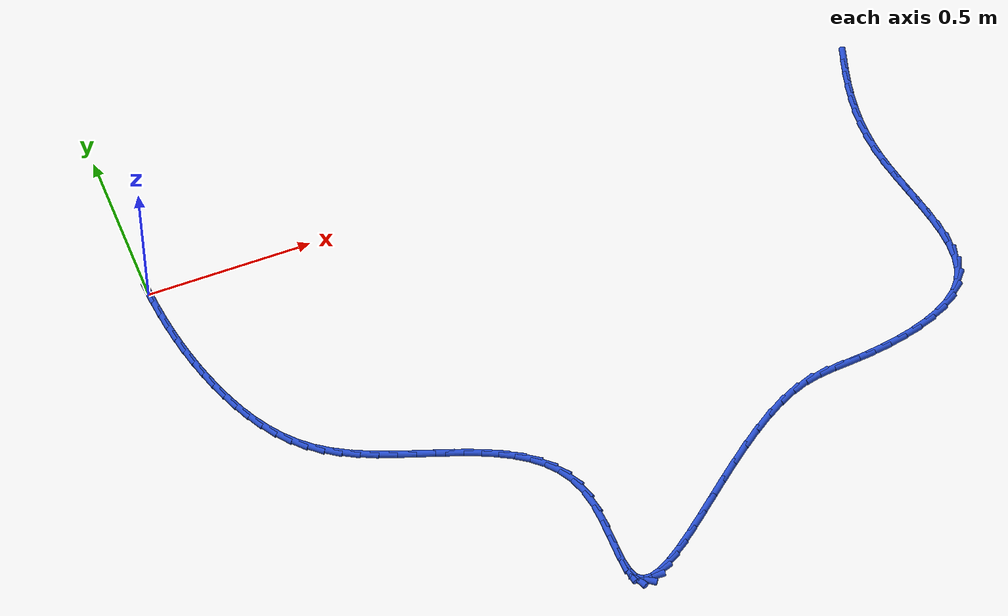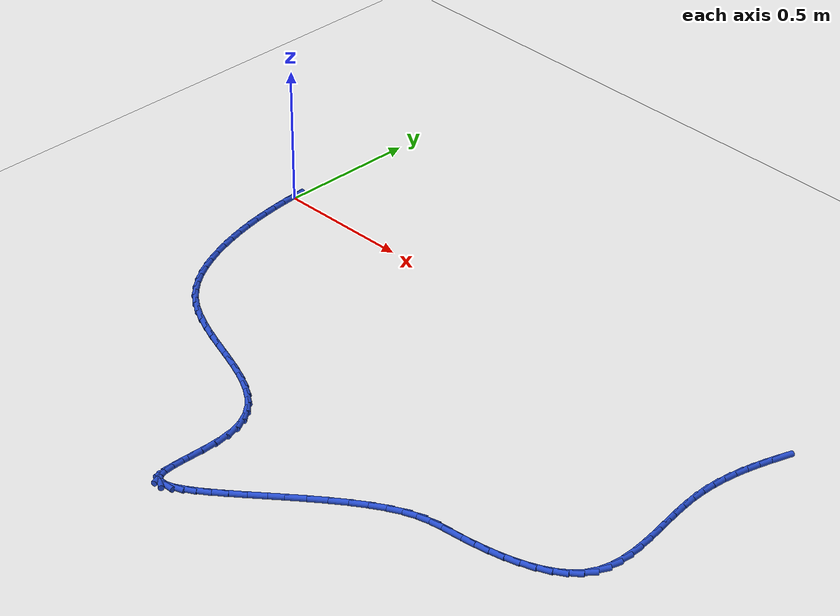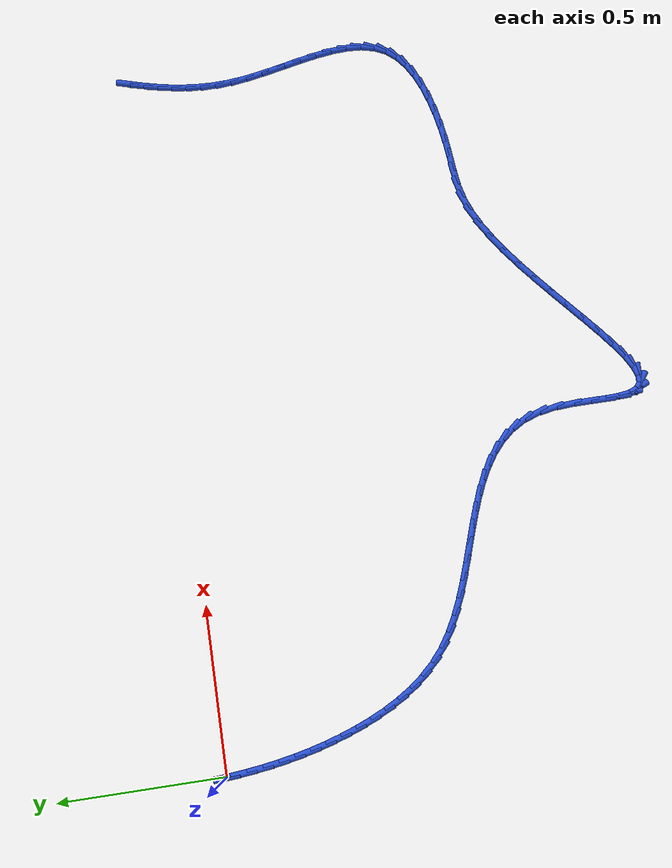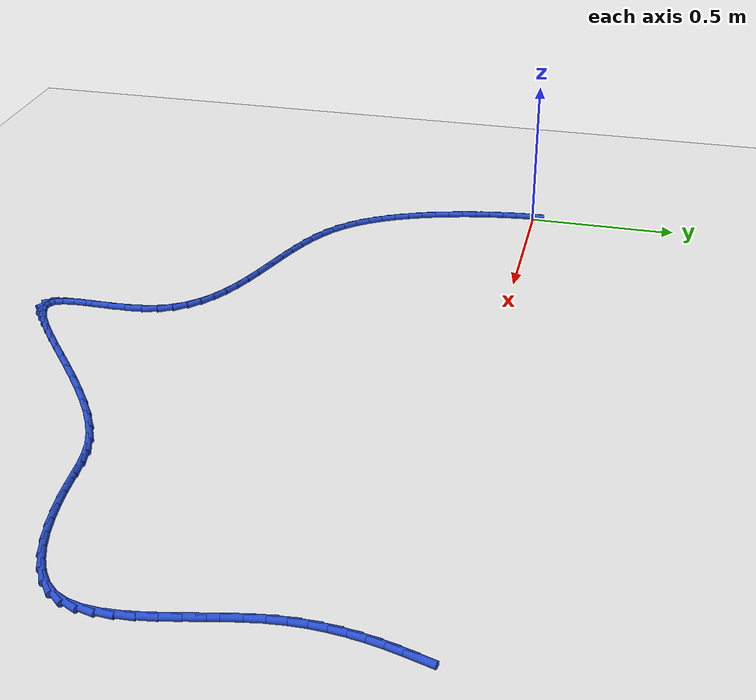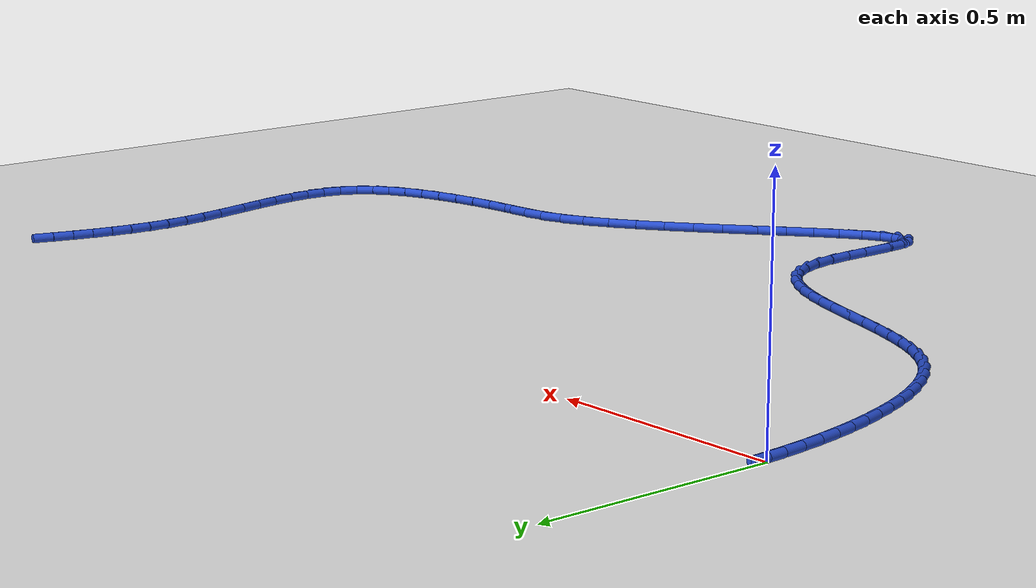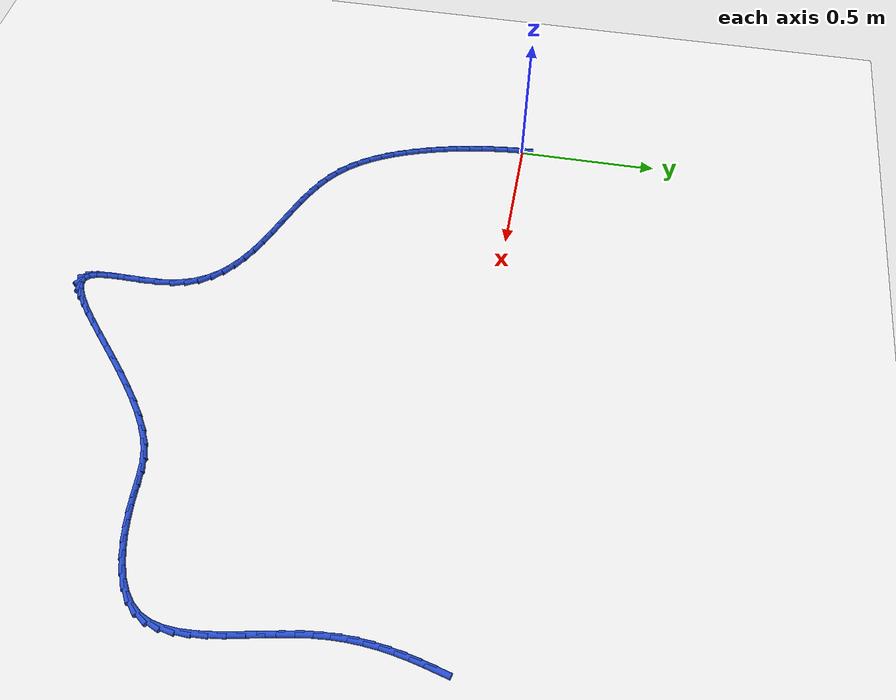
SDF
<sdf version="1.6">
 <world name="default">
  <model name="ground_plane">
   <static>1</static>
   <link name="link">
    <collision name="collision">
     <geometry><plane><normal>0 0 1</normal><size>100 100</size></plane></geometry>
     <surface><friction><ode><mu>100</mu><mu2>50</mu2></ode></friction></surface>
    </collision>
    <visual name="visual">
     <cast_shadows>0</cast_shadows>
     <geometry><plane><normal>0 0 1</normal><size>100 100</size></plane></geometry>
     <material>
      <script><uri>file://media/materials/scripts/gazebo.material</uri><name>Gazebo/WhiteGlow</name></script>
     </material>
    </visual>
   </link>
  </model>
  <model name="line">
   <link name="link_0">
    <pose>1.6263032587282567e-17 1.3877787807814457e-17 0.01 0 1.57 -1.513585574308806</pose>
    <collision name="collision">
     <geometry><cylinder><radius>0.01</radius><length>0.08</length></cylinder></geometry>
    </collision>
    <visual name="visual">
     <material>
      <script><name>Gazebo/Blue</name><uri>file://media/materials/scripts/gazebo.material</uri></script>
     </material>
     <geometry><cylinder><radius>0.01</radius><length>0.08</length></cylinder></geometry>
    </visual>
   </link>
   <link name="link_86">
    <pose>2.2250624717521132 0.04204985202964082 0.01 0 1.57 1.2909860486282276</pose>
    <collision name="collision">
     <geometry><cylinder><radius>0.01</radius><length>0.08</length></cylinder></geometry>
    </collision>
    <visual name="visual">
     <material>
      <script><name>Gazebo/Blue</name><uri>file://media/materials/scripts/gazebo.material</uri></script>
     </material>
     <geometry><cylinder><radius>0.01</radius><length>0.08</length></cylinder></geometry>
    </visual>
   </link>
   <link name="link_87">
    <pose>2.2123838200711945 -0.002072991203806482 0.01 0 1.57 1.3229405477086498</pose>
    <collision name="collision">
     <geometry><cylinder><radius>0.01</radius><length>0.08</length></cylinder></geometry>
    </collision>
    <visual name="visual">
     <material>
      <script><name>Gazebo/Blue</name><uri>file://media/materials/scripts/gazebo.material</uri></script>
     </material>
     <geometry><cylinder><radius>0.01</radius><length>0.08</length></cylinder></geometry>
    </visual>
   </link>
   <link name="link_88">
    <pose>2.2011722596943297 -0.04637710199915017 0.01 0 1.57 1.364024570623312</pose>
    <collision name="collision">
     <geometry><cylinder><radius>0.01</radius><length>0.08</length></cylinder></geometry>
    </collision>
    <visual name="visual">
     <material>
      <script><name>Gazebo/Blue</name><uri>file://media/materials/scripts/gazebo.material</uri></script>
     </material>
     <geometry><cylinder><radius>0.01</radius><length>0.08</length></cylinder></geometry>
    </visual>
   </link>
   <link name="link_89">
    <pose>2.191786203127898 -0.09112164707544651 0.01 0 1.57 1.4136202119545818</pose>
    <collision name="collision">
     <geometry><cylinder><radius>0.01</radius><length>0.08</length></cylinder></geometry>
    </collision>
    <visual name="visual">
     <material>
      <script><name>Gazebo/Blue</name><uri>file://media/materials/scripts/gazebo.material</uri></script>
     </material>
     <geometry><cylinder><radius>0.01</radius><length>0.08</length></cylinder></geometry>
    </visual>
   </link>
   <link name="link_90">
    <pose>2.1845840628782804 -0.13656579315174955 0.01 0 1.57 1.4707111924177096</pose>
    <collision name="collision">
     <geometry><cylinder><radius>0.01</radius><length>0.08</length></cylinder></geometry>
    </collision>
    <visual name="visual">
     <material>
      <script><name>Gazebo/Blue</name><uri>file://media/materials/scripts/gazebo.material</uri></script>
     </material>
     <geometry><cylinder><radius>0.01</radius><length>0.08</length></cylinder></geometry>
    </visual>
   </link>
   <link name="link_91">
    <pose>2.1799242514518555 -0.1829687069471155 0.01 0 1.57 1.5338740388577399</pose>
    <collision name="collision">
     <geometry><cylinder><radius>0.01</radius><length>0.08</length></cylinder></geometry>
    </collision>
    <visual name="visual">
     <material>
      <script><name>Gazebo/Blue</name><uri>file://media/materials/scripts/gazebo.material</uri></script>
     </material>
     <geometry><cylinder><radius>0.01</radius><length>0.08</length></cylinder></geometry>
    </visual>
   </link>
   <link name="link_92">
    <pose>2.1781651813550047 -0.2305895551806 0.01 0 1.57 -1.5402529486358585</pose>
    <collision name="collision">
     <geometry><cylinder><radius>0.01</radius><length>0.08</length></cylinder></geometry>
    </collision>
    <visual name="visual">
     <material>
      <script><name>Gazebo/Blue</name><uri>file://media/materials/scripts/gazebo.material</uri></script>
     </material>
     <geometry><cylinder><radius>0.01</radius><length>0.08</length></cylinder></geometry>
    </visual>
   </link>
   <link name="link_93">
    <pose>2.1796652650941057 -0.27968750457125857 0.01 0 1.57 -1.470553014191597</pose>
    <collision name="collision">
     <geometry><cylinder><radius>0.01</radius><length>0.08</length></cylinder></geometry>
    </collision>
    <visual name="visual">
     <material>
      <script><name>Gazebo/Blue</name><uri>file://media/materials/scripts/gazebo.material</uri></script>
     </material>
     <geometry><cylinder><radius>0.01</radius><length>0.08</length></cylinder></geometry>
    </visual>
   </link>
   <link name="link_94">
    <pose>2.184777904194932 -0.3305188500503508 0.01 0 1.57 -1.4095554112603081</pose>
    <collision name="collision">
     <geometry><cylinder><radius>0.01</radius><length>0.08</length></cylinder></geometry>
    </collision>
    <visual name="visual">
     <material>
      <script><name>Gazebo/Blue</name><uri>file://media/materials/scripts/gazebo.material</uri></script>
     </material>
     <geometry><cylinder><radius>0.01</radius><length>0.08</length></cylinder></geometry>
    </visual>
   </link>
   <link name="link_95">
    <pose>2.1933193284508654 -0.38303203398562147 0.01 0 1.57 -1.3722291275021659</pose>
    <collision name="collision">
     <geometry><cylinder><radius>0.01</radius><length>0.08</length></cylinder></geometry>
    </collision>
    <visual name="visual">
     <material>
      <script><name>Gazebo/Blue</name><uri>file://media/materials/scripts/gazebo.material</uri></script>
     </material>
     <geometry><cylinder><radius>0.01</radius><length>0.08</length></cylinder></geometry>
    </visual>
   </link>
   <link name="link_96">
    <pose>2.2040977704781923 -0.4365978166065487 0.01 0 1.57 -1.3569176987446583</pose>
    <collision name="collision">
     <geometry><cylinder><radius>0.01</radius><length>0.08</length></cylinder></geometry>
    </collision>
    <visual name="visual">
     <material>
      <script><name>Gazebo/Blue</name><uri>file://media/materials/scripts/gazebo.material</uri></script>
     </material>
     <geometry><cylinder><radius>0.01</radius><length>0.08</length></cylinder></geometry>
    </visual>
   </link>
   <link name="link_97">
    <pose>2.215810425614828 -0.49052332279337285 0.01 0 1.57 -1.3622021734464136</pose>
    <collision name="collision">
     <geometry><cylinder><radius>0.01</radius><length>0.08</length></cylinder></geometry>
    </collision>
    <visual name="visual">
     <material>
      <script><name>Gazebo/Blue</name><uri>file://media/materials/scripts/gazebo.material</uri></script>
     </material>
     <geometry><cylinder><radius>0.01</radius><length>0.08</length></cylinder></geometry>
    </visual>
   </link>
   <link name="link_98">
    <pose>2.227154489198691 -0.5441156774263345 0.01 0 1.57 -1.3888231209143478</pose>
    <collision name="collision">
     <geometry><cylinder><radius>0.01</radius><length>0.08</length></cylinder></geometry>
    </collision>
    <visual name="visual">
     <material>
      <script><name>Gazebo/Blue</name><uri>file://media/materials/scripts/gazebo.material</uri></script>
     </material>
     <geometry><cylinder><radius>0.01</radius><length>0.08</length></cylinder></geometry>
    </visual>
   </link>
   <link name="link_99">
    <pose>2.2368271565676974 -0.5966820053856748 0.01 0 1.57 -1.4398139748707752</pose>
    <collision name="collision">
     <geometry><cylinder><radius>0.01</radius><length>0.08</length></cylinder></geometry>
    </collision>
    <visual name="visual">
     <material>
      <script><name>Gazebo/Blue</name><uri>file://media/materials/scripts/gazebo.material</uri></script>
     </material>
     <geometry><cylinder><radius>0.01</radius><length>0.08</length></cylinder></geometry>
    </visual>
   </link>
   <link name="link_100">
    <pose>2.2435256230597656 -0.647529431551633 0.01 0 1.57 -1.5208445523929113</pose>
    <collision name="collision">
     <geometry><cylinder><radius>0.01</radius><length>0.08</length></cylinder></geometry>
    </collision>
    <visual name="visual">
     <material>
      <script><name>Gazebo/Blue</name><uri>file://media/materials/scripts/gazebo.material</uri></script>
     </material>
     <geometry><cylinder><radius>0.01</radius><length>0.08</length></cylinder></geometry>
    </visual>
   </link>
   <link name="link_101">
    <pose>2.245947084012812 -0.6959650808044499 0.01 0 1.57 1.5012356792663732</pose>
    <collision name="collision">
     <geometry><cylinder><radius>0.01</radius><length>0.08</length></cylinder></geometry>
    </collision>
    <visual name="visual">
     <material>
      <script><name>Gazebo/Blue</name><uri>file://media/materials/scripts/gazebo.material</uri></script>
     </material>
     <geometry><cylinder><radius>0.01</radius><length>0.08</length></cylinder></geometry>
    </visual>
   </link>
   <link name="link_102">
    <pose>2.2427887347647535 -0.7412960780243661 0.01 0 1.57 1.3335916795099012</pose>
    <collision name="collision">
     <geometry><cylinder><radius>0.01</radius><length>0.08</length></cylinder></geometry>
    </collision>
    <visual name="visual">
     <material>
      <script><name>Gazebo/Blue</name><uri>file://media/materials/scripts/gazebo.material</uri></script>
     </material>
     <geometry><cylinder><radius>0.01</radius><length>0.08</length></cylinder></geometry>
    </visual>
   </link>
   <link name="link_103">
    <pose>2.2327477706535084 -0.7828295480916223 0.01 0 1.57 1.1135432185725953</pose>
    <collision name="collision">
     <geometry><cylinder><radius>0.01</radius><length>0.08</length></cylinder></geometry>
    </collision>
    <visual name="visual">
     <material>
      <script><name>Gazebo/Blue</name><uri>file://media/materials/scripts/gazebo.material</uri></script>
     </material>
     <geometry><cylinder><radius>0.01</radius><length>0.08</length></cylinder></geometry>
    </visual>
   </link>
   <link name="link_104">
    <pose>2.214521387016992 -0.8198726158864595 0.01 0 1.57 0.8642345366282593</pose>
    <collision name="collision">
     <geometry><cylinder><radius>0.01</radius><length>0.08</length></cylinder></geometry>
    </collision>
    <visual name="visual">
     <material>
      <script><name>Gazebo/Blue</name><uri>file://media/materials/scripts/gazebo.material</uri></script>
     </material>
     <geometry><cylinder><radius>0.01</radius><length>0.08</length></cylinder></geometry>
    </visual>
   </link>
   <link name="link_105">
    <pose>2.187197387952818 -0.851884126605008 0.01 0 1.57 0.6532415918428539</pose>
    <collision name="collision">
     <geometry><cylinder><radius>0.01</radius><length>0.08</length></cylinder></geometry>
    </collision>
    <visual name="visual">
     <material>
      <script><name>Gazebo/Blue</name><uri>file://media/materials/scripts/gazebo.material</uri></script>
     </material>
     <geometry><cylinder><radius>0.01</radius><length>0.08</length></cylinder></geometry>
    </visual>
   </link>
   <link name="link_106">
    <pose>2.1517131609051345 -0.8790413408978405 0.01 0 1.57 0.4937755337858892</pose>
    <collision name="collision">
     <geometry><cylinder><radius>0.01</radius><length>0.08</length></cylinder></geometry>
    </collision>
    <visual name="visual">
     <material>
      <script><name>Gazebo/Blue</name><uri>file://media/materials/scripts/gazebo.material</uri></script>
     </material>
     <geometry><cylinder><radius>0.01</radius><length>0.08</length></cylinder></geometry>
    </visual>
   </link>
   <link name="link_107">
    <pose>2.1095529989361945 -0.9017339485817517 0.01 0 1.57 0.374612780022125</pose>
    <collision name="collision">
     <geometry><cylinder><radius>0.01</radius><length>0.08</length></cylinder></geometry>
    </collision>
    <visual name="visual">
     <material>
      <script><name>Gazebo/Blue</name><uri>file://media/materials/scripts/gazebo.material</uri></script>
     </material>
     <geometry><cylinder><radius>0.01</radius><length>0.08</length></cylinder></geometry>
    </visual>
   </link>
   <link name="link_108">
    <pose>2.0622012772830747 -0.920351671391895 0.01 0 1.57 0.2845227796980248</pose>
    <collision name="collision">
     <geometry><cylinder><radius>0.01</radius><length>0.08</length></cylinder></geometry>
    </collision>
    <visual name="visual">
     <material>
      <script><name>Gazebo/Blue</name><uri>file://media/materials/scripts/gazebo.material</uri></script>
     </material>
     <geometry><cylinder><radius>0.01</radius><length>0.08</length></cylinder></geometry>
    </visual>
   </link>
   <link name="link_109">
    <pose>2.011142371182855 -0.9352842310634244 0.01 0 1.57 0.21503067431816641</pose>
    <collision name="collision">
     <geometry><cylinder><radius>0.01</radius><length>0.08</length></cylinder></geometry>
    </collision>
    <visual name="visual">
     <material>
      <script><name>Gazebo/Blue</name><uri>file://media/materials/scripts/gazebo.material</uri></script>
     </material>
     <geometry><cylinder><radius>0.01</radius><length>0.08</length></cylinder></geometry>
    </visual>
   </link>
   <link name="link_110">
    <pose>1.9578606558726104 -0.9469213493314932 0.01 0 1.57 0.16024636897109834</pose>
    <collision name="collision">
     <geometry><cylinder><radius>0.01</radius><length>0.08</length></cylinder></geometry>
    </collision>
    <visual name="visual">
     <material>
      <script><name>Gazebo/Blue</name><uri>file://media/materials/scripts/gazebo.material</uri></script>
     </material>
     <geometry><cylinder><radius>0.01</radius><length>0.08</length></cylinder></geometry>
    </visual>
   </link>
   <link name="link_111">
    <pose>1.9038405065894215 -0.9556527479312549 0.01 0 1.57 0.11614304166988944</pose>
    <collision name="collision">
     <geometry><cylinder><radius>0.01</radius><length>0.08</length></cylinder></geometry>
    </collision>
    <visual name="visual">
     <material>
      <script><name>Gazebo/Blue</name><uri>file://media/materials/scripts/gazebo.material</uri></script>
     </material>
     <geometry><cylinder><radius>0.01</radius><length>0.08</length></cylinder></geometry>
    </visual>
   </link>
   <link name="link_112">
    <pose>1.8505662985703655 -0.9618681485978628 0.01 0 1.57 0.08055806002078887</pose>
    <collision name="collision">
     <geometry><cylinder><radius>0.01</radius><length>0.08</length></cylinder></geometry>
    </collision>
    <visual name="visual">
     <material>
      <script><name>Gazebo/Blue</name><uri>file://media/materials/scripts/gazebo.material</uri></script>
     </material>
     <geometry><cylinder><radius>0.01</radius><length>0.08</length></cylinder></geometry>
    </visual>
   </link>
   <link name="link_113">
    <pose>1.7994815155437727 -0.9659923649835638 0.01 0 1.57 0.07301770358086528</pose>
    <collision name="collision">
     <geometry><cylinder><radius>0.01</radius><length>0.08</length></cylinder></geometry>
    </collision>
    <visual name="visual">
     <material>
      <script><name>Gazebo/Blue</name><uri>file://media/materials/scripts/gazebo.material</uri></script>
     </material>
     <geometry><cylinder><radius>0.01</radius><length>0.08</length></cylinder></geometry>
    </visual>
   </link>
   <link name="link_114">
    <pose>1.7507390404235283 -0.9695577672521726 0.01 0 1.57 0.12174850628199965</pose>
    <collision name="collision">
     <geometry><cylinder><radius>0.01</radius><length>0.08</length></cylinder></geometry>
    </collision>
    <visual name="visual">
     <material>
      <script><name>Gazebo/Blue</name><uri>file://media/materials/scripts/gazebo.material</uri></script>
     </material>
     <geometry><cylinder><radius>0.01</radius><length>0.08</length></cylinder></geometry>
    </visual>
   </link>
   <link name="link_115">
    <pose>1.7029702305143972 -0.9754024550983038 0.01 0 1.57 0.22487420371782463</pose>
    <collision name="collision">
     <geometry><cylinder><radius>0.01</radius><length>0.08</length></cylinder></geometry>
    </collision>
    <visual name="visual">
     <material>
      <script><name>Gazebo/Blue</name><uri>file://media/materials/scripts/gazebo.material</uri></script>
     </material>
     <geometry><cylinder><radius>0.01</radius><length>0.08</length></cylinder></geometry>
    </visual>
   </link>
   <link name="link_116">
    <pose>1.6547189740186161 -0.9864395916854525 0.01 0 1.57 0.3580722073080652</pose>
    <collision name="collision">
     <geometry><cylinder><radius>0.01</radius><length>0.08</length></cylinder></geometry>
    </collision>
    <visual name="visual">
     <material>
      <script><name>Gazebo/Blue</name><uri>file://media/materials/scripts/gazebo.material</uri></script>
     </material>
     <geometry><cylinder><radius>0.01</radius><length>0.08</length></cylinder></geometry>
    </visual>
   </link>
   <link name="link_117">
    <pose>1.6047355270652652 -1.0051435736855454 0.01 0 1.57 0.46756161258241413</pose>
    <collision name="collision">
     <geometry><cylinder><radius>0.01</radius><length>0.08</length></cylinder></geometry>
    </collision>
    <visual name="visual">
     <material>
      <script><name>Gazebo/Blue</name><uri>file://media/materials/scripts/gazebo.material</uri></script>
     </material>
     <geometry><cylinder><radius>0.01</radius><length>0.08</length></cylinder></geometry>
    </visual>
   </link>
   <link name="link_118">
    <pose>1.5530672376604162 -1.031231002696439 0.01 0 1.57 0.5464792774022382</pose>
    <collision name="collision">
     <geometry><cylinder><radius>0.01</radius><length>0.08</length></cylinder></geometry>
    </collision>
    <visual name="visual">
     <material>
      <script><name>Gazebo/Blue</name><uri>file://media/materials/scripts/gazebo.material</uri></script>
     </material>
     <geometry><cylinder><radius>0.01</radius><length>0.08</length></cylinder></geometry>
    </visual>
   </link>
   <link name="link_119">
    <pose>1.5002641926724487 -1.0633495886032198 0.01 0 1.57 0.6034542473128535</pose>
    <collision name="collision">
     <geometry><cylinder><radius>0.01</radius><length>0.08</length></cylinder></geometry>
    </collision>
    <visual name="visual">
     <material>
      <script><name>Gazebo/Blue</name><uri>file://media/materials/scripts/gazebo.material</uri></script>
     </material>
     <geometry><cylinder><radius>0.01</radius><length>0.08</length></cylinder></geometry>
    </visual>
   </link>
   <link name="link_120">
    <pose>1.446877579939495 -1.10014470047841 0.01 0 1.57 0.6441329431134925</pose>
    <collision name="collision">
     <geometry><cylinder><radius>0.01</radius><length>0.08</length></cylinder></geometry>
    </collision>
    <visual name="visual">
     <material>
      <script><name>Gazebo/Blue</name><uri>file://media/materials/scripts/gazebo.material</uri></script>
     </material>
     <geometry><cylinder><radius>0.01</radius><length>0.08</length></cylinder></geometry>
    </visual>
   </link>
   <link name="link_121">
    <pose>1.3934585872996867 -1.1402617073945334 0.01 0 1.57 0.6720161797335621</pose>
    <collision name="collision">
     <geometry><cylinder><radius>0.01</radius><length>0.08</length></cylinder></geometry>
    </collision>
    <visual name="visual">
     <material>
      <script><name>Gazebo/Blue</name><uri>file://media/materials/scripts/gazebo.material</uri></script>
     </material>
     <geometry><cylinder><radius>0.01</radius><length>0.08</length></cylinder></geometry>
    </visual>
   </link>
   <link name="link_122">
    <pose>1.3405584025911583 -1.1823459784241102 0.01 0 1.57 0.6890763464902059</pose>
    <collision name="collision">
     <geometry><cylinder><radius>0.01</radius><length>0.08</length></cylinder></geometry>
    </collision>
    <visual name="visual">
     <material>
      <script><name>Gazebo/Blue</name><uri>file://media/materials/scripts/gazebo.material</uri></script>
     </material>
     <geometry><cylinder><radius>0.01</radius><length>0.08</length></cylinder></geometry>
    </visual>
   </link>
   <link name="link_123">
    <pose>1.2887282136520415 -1.2250428826396642 0.01 0 1.57 0.6960775590176319</pose>
    <collision name="collision">
     <geometry><cylinder><radius>0.01</radius><length>0.08</length></cylinder></geometry>
    </collision>
    <visual name="visual">
     <material>
      <script><name>Gazebo/Blue</name><uri>file://media/materials/scripts/gazebo.material</uri></script>
     </material>
     <geometry><cylinder><radius>0.01</radius><length>0.08</length></cylinder></geometry>
    </visual>
   </link>
   <link name="link_124">
    <pose>1.2385192083204686 -1.2669977891137176 0.01 0 1.57 0.6926183227125393</pose>
    <collision name="collision">
     <geometry><cylinder><radius>0.01</radius><length>0.08</length></cylinder></geometry>
    </collision>
    <visual name="visual">
     <material>
      <script><name>Gazebo/Blue</name><uri>file://media/materials/scripts/gazebo.material</uri></script>
     </material>
     <geometry><cylinder><radius>0.01</radius><length>0.08</length></cylinder></geometry>
    </visual>
   </link>
   <link name="link_125">
    <pose>1.1904825744345724 -1.306856066918793 0.01 0 1.57 0.6768441267081021</pose>
    <collision name="collision">
     <geometry><cylinder><radius>0.01</radius><length>0.08</length></cylinder></geometry>
    </collision>
    <visual name="visual">
     <material>
      <script><name>Gazebo/Blue</name><uri>file://media/materials/scripts/gazebo.material</uri></script>
     </material>
     <geometry><cylinder><radius>0.01</radius><length>0.08</length></cylinder></geometry>
    </visual>
   </link>
   <link name="link_126">
    <pose>1.1451694998324846 -1.3432630851274132 0.01 0 1.57 0.6446021577075886</pose>
    <collision name="collision">
     <geometry><cylinder><radius>0.01</radius><length>0.08</length></cylinder></geometry>
    </collision>
    <visual name="visual">
     <material>
      <script><name>Gazebo/Blue</name><uri>file://media/materials/scripts/gazebo.material</uri></script>
     </material>
     <geometry><cylinder><radius>0.01</radius><length>0.08</length></cylinder></geometry>
    </visual>
   </link>
   <link name="link_127">
    <pose>1.1031311723523394 -1.3748642128120991 0.01 0 1.57 0.5873805196388583</pose>
    <collision name="collision">
     <geometry><cylinder><radius>0.01</radius><length>0.08</length></cylinder></geometry>
    </collision>
    <visual name="visual">
     <material>
      <script><name>Gazebo/Blue</name><uri>file://media/materials/scripts/gazebo.material</uri></script>
     </material>
     <geometry><cylinder><radius>0.01</radius><length>0.08</length></cylinder></geometry>
    </visual>
   </link>
   <link name="link_128">
    <pose>1.0649187798322688 -1.400304819045375 0.01 0 1.57 0.4871915327500545</pose>
    <collision name="collision">
     <geometry><cylinder><radius>0.01</radius><length>0.08</length></cylinder></geometry>
    </collision>
    <visual name="visual">
     <material>
      <script><name>Gazebo/Blue</name><uri>file://media/materials/scripts/gazebo.material</uri></script>
     </material>
     <geometry><cylinder><radius>0.01</radius><length>0.08</length></cylinder></geometry>
    </visual>
   </link>
   <link name="link_129">
    <pose>1.0310835101104046 -1.4182302728997622 0.01 0 1.57 0.3035858146205382</pose>
    <collision name="collision">
     <geometry><cylinder><radius>0.01</radius><length>0.08</length></cylinder></geometry>
    </collision>
    <visual name="visual">
     <material>
      <script><name>Gazebo/Blue</name><uri>file://media/materials/scripts/gazebo.material</uri></script>
     </material>
     <geometry><cylinder><radius>0.01</radius><length>0.08</length></cylinder></geometry>
    </visual>
   </link>
   <link name="link_130">
    <pose>1.0021765510248801 -1.4272859434477836 0.01 0 1.57 -0.0498464415296089</pose>
    <collision name="collision">
     <geometry><cylinder><radius>0.01</radius><length>0.08</length></cylinder></geometry>
    </collision>
    <visual name="visual">
     <material>
      <script><name>Gazebo/Blue</name><uri>file://media/materials/scripts/gazebo.material</uri></script>
     </material>
     <geometry><cylinder><radius>0.01</radius><length>0.08</length></cylinder></geometry>
    </visual>
   </link>
   <link name="link_131">
    <pose>0.978749090413827 -1.4261171997619608 0.01 0 1.57 -0.6323807070644342</pose>
    <collision name="collision">
     <geometry><cylinder><radius>0.01</radius><length>0.08</length></cylinder></geometry>
    </collision>
    <visual name="visual">
     <material>
      <script><name>Gazebo/Blue</name><uri>file://media/materials/scripts/gazebo.material</uri></script>
     </material>
     <geometry><cylinder><radius>0.01</radius><length>0.08</length></cylinder></geometry>
    </visual>
   </link>
   <link name="link_132">
    <pose>0.9613523161153791 -1.4133694109148172 0.01 0 1.57 -1.170460483699187</pose>
    <collision name="collision">
     <geometry><cylinder><radius>0.01</radius><length>0.08</length></cylinder></geometry>
    </collision>
    <visual name="visual">
     <material>
      <script><name>Gazebo/Blue</name><uri>file://media/materials/scripts/gazebo.material</uri></script>
     </material>
     <geometry><cylinder><radius>0.01</radius><length>0.08</length></cylinder></geometry>
    </visual>
   </link>
   <link name="link_133">
    <pose>0.9505056989605555 -1.3877387511520816 0.01 0 1.57 -1.4403601209265926</pose>
    <collision name="collision">
     <geometry><cylinder><radius>0.01</radius><length>0.08</length></cylinder></geometry>
    </collision>
    <visual name="visual">
     <material>
      <script><name>Gazebo/Blue</name><uri>file://media/materials/scripts/gazebo.material</uri></script>
     </material>
     <geometry><cylinder><radius>0.01</radius><length>0.08</length></cylinder></geometry>
    </visual>
   </link>
   <link name="link_134">
    <pose>0.9455335551745749 -1.3498358261959384 0.01 0 1.57 -1.5431172047885529</pose>
    <collision name="collision">
     <geometry><cylinder><radius>0.01</radius><length>0.08</length></cylinder></geometry>
    </collision>
    <visual name="visual">
     <material>
      <script><name>Gazebo/Blue</name><uri>file://media/materials/scripts/gazebo.material</uri></script>
     </material>
     <geometry><cylinder><radius>0.01</radius><length>0.08</length></cylinder></geometry>
    </visual>
   </link>
   <link name="link_135">
    <pose>0.9442291982160897 -1.302723644054129 0.01 0 1.57 1.569731075591983</pose>
    <collision name="collision">
     <geometry><cylinder><radius>0.01</radius><length>0.08</length></cylinder></geometry>
    </collision>
    <visual name="visual">
     <material>
      <script><name>Gazebo/Blue</name><uri>file://media/materials/scripts/gazebo.material</uri></script>
     </material>
     <geometry><cylinder><radius>0.01</radius><length>0.08</length></cylinder></geometry>
    </visual>
   </link>
   <link name="link_136">
    <pose>0.9442857609024126 -1.249625684837482 0.01 0 1.57 -1.5548760684301377</pose>
    <collision name="collision">
     <geometry><cylinder><radius>0.01</radius><length>0.08</length></cylinder></geometry>
    </collision>
    <visual name="visual">
     <material>
      <script><name>Gazebo/Blue</name><uri>file://media/materials/scripts/gazebo.material</uri></script>
     </material>
     <geometry><cylinder><radius>0.01</radius><length>0.08</length></cylinder></geometry>
    </visual>
   </link>
   <link name="link_137">
    <pose>0.9433963760508569 -1.193765428656832 0.01 0 1.57 -1.4961650011639316</pose>
    <collision name="collision">
     <geometry><cylinder><radius>0.01</radius><length>0.08</length></cylinder></geometry>
    </collision>
    <visual name="visual">
     <material>
      <script><name>Gazebo/Blue</name><uri>file://media/materials/scripts/gazebo.material</uri></script>
     </material>
     <geometry><cylinder><radius>0.01</radius><length>0.08</length></cylinder></geometry>
    </visual>
   </link>
   <link name="link_138">
    <pose>0.9392541764787351 -1.1383663556230081 0.01 0 1.57 -1.3853698854091057</pose>
    <collision name="collision">
     <geometry><cylinder><radius>0.01</radius><length>0.08</length></cylinder></geometry>
    </collision>
    <visual name="visual">
     <material>
      <script><name>Gazebo/Blue</name><uri>file://media/materials/scripts/gazebo.material</uri></script>
     </material>
     <geometry><cylinder><radius>0.01</radius><length>0.08</length></cylinder></geometry>
    </visual>
   </link>
   <link name="link_139">
    <pose>0.929553285278865 -1.0866506799149884 0.01 0 1.57 -1.2177937991343917</pose>
    <collision name="collision">
     <geometry><cylinder><radius>0.01</radius><length>0.08</length></cylinder></geometry>
    </collision>
    <visual name="visual">
     <material>
      <script><name>Gazebo/Blue</name><uri>file://media/materials/scripts/gazebo.material</uri></script>
     </material>
     <geometry><cylinder><radius>0.01</radius><length>0.08</length></cylinder></geometry>
    </visual>
   </link>
   <link name="link_140">
    <pose>0.9127056198996516 -1.0409230137562488 0.01 0 1.57 -1.037444210460758</pose>
    <collision name="collision">
     <geometry><cylinder><radius>0.01</radius><length>0.08</length></cylinder></geometry>
    </collision>
    <visual name="visual">
     <material>
      <script><name>Gazebo/Blue</name><uri>file://media/materials/scripts/gazebo.material</uri></script>
     </material>
     <geometry><cylinder><radius>0.01</radius><length>0.08</length></cylinder></geometry>
    </visual>
   </link>
   <link name="link_141">
    <pose>0.8891061323726053 -1.0009529307521499 0.01 0 1.57 -0.8667798619228233</pose>
    <collision name="collision">
     <geometry><cylinder><radius>0.01</radius><length>0.08</length></cylinder></geometry>
    </collision>
    <visual name="visual">
     <material>
      <script><name>Gazebo/Blue</name><uri>file://media/materials/scripts/gazebo.material</uri></script>
     </material>
     <geometry><cylinder><radius>0.01</radius><length>0.08</length></cylinder></geometry>
    </visual>
   </link>
   <link name="link_142">
    <pose>0.8594893452308109 -0.9660759100437383 0.01 0 1.57 -0.7173896924136234</pose>
    <collision name="collision">
     <geometry><cylinder><radius>0.01</radius><length>0.08</length></cylinder></geometry>
    </collision>
    <visual name="visual">
     <material>
      <script><name>Gazebo/Blue</name><uri>file://media/materials/scripts/gazebo.material</uri></script>
     </material>
     <geometry><cylinder><radius>0.01</radius><length>0.08</length></cylinder></geometry>
    </visual>
   </link>
   <link name="link_143">
    <pose>0.8245897810073556 -0.9356274307720625 0.01 0 1.57 -0.5947448141990015</pose>
    <collision name="collision">
     <geometry><cylinder><radius>0.01</radius><length>0.08</length></cylinder></geometry>
    </collision>
    <visual name="visual">
     <material>
      <script><name>Gazebo/Blue</name><uri>file://media/materials/scripts/gazebo.material</uri></script>
     </material>
     <geometry><cylinder><radius>0.01</radius><length>0.08</length></cylinder></geometry>
    </visual>
   </link>
   <link name="link_144">
    <pose>0.7851419622353243 -0.9089429720781687 0.01 0 1.57 -0.49912845333594785</pose>
    <collision name="collision">
     <geometry><cylinder><radius>0.01</radius><length>0.08</length></cylinder></geometry>
    </collision>
    <visual name="visual">
     <material>
      <script><name>Gazebo/Blue</name><uri>file://media/materials/scripts/gazebo.material</uri></script>
     </material>
     <geometry><cylinder><radius>0.01</radius><length>0.08</length></cylinder></geometry>
    </visual>
   </link>
   <link name="link_145">
    <pose>0.7418804114478027 -0.8853580131031048 0.01 0 1.57 -0.42816442544431516</pose>
    <collision name="collision">
     <geometry><cylinder><radius>0.01</radius><length>0.08</length></cylinder></geometry>
    </collision>
    <visual name="visual">
     <material>
      <script><name>Gazebo/Blue</name><uri>file://media/materials/scripts/gazebo.material</uri></script>
     </material>
     <geometry><cylinder><radius>0.01</radius><length>0.08</length></cylinder></geometry>
    </visual>
   </link>
   <link name="link_146">
    <pose>0.6955396511778761 -0.8642080329879179 0.01 0 1.57 -0.37882917500725616</pose>
    <collision name="collision">
     <geometry><cylinder><radius>0.01</radius><length>0.08</length></cylinder></geometry>
    </collision>
    <visual name="visual">
     <material>
      <script><name>Gazebo/Blue</name><uri>file://media/materials/scripts/gazebo.material</uri></script>
     </material>
     <geometry><cylinder><radius>0.01</radius><length>0.08</length></cylinder></geometry>
    </visual>
   </link>
   <link name="link_147">
    <pose>0.6468542039586298 -0.8448285108736548 0.01 0 1.57 -0.348494779542307</pose>
    <collision name="collision">
     <geometry><cylinder><radius>0.01</radius><length>0.08</length></cylinder></geometry>
    </collision>
    <visual name="visual">
     <material>
      <script><name>Gazebo/Blue</name><uri>file://media/materials/scripts/gazebo.material</uri></script>
     </material>
     <geometry><cylinder><radius>0.01</radius><length>0.08</length></cylinder></geometry>
    </visual>
   </link>
   <link name="link_148">
    <pose>0.596558592323151 -0.8265549259013635 0.01 0 1.57 -0.335320236714541</pose>
    <collision name="collision">
     <geometry><cylinder><radius>0.01</radius><length>0.08</length></cylinder></geometry>
    </collision>
    <visual name="visual">
     <material>
      <script><name>Gazebo/Blue</name><uri>file://media/materials/scripts/gazebo.material</uri></script>
     </material>
     <geometry><cylinder><radius>0.01</radius><length>0.08</length></cylinder></geometry>
    </visual>
   </link>
   <link name="link_149">
    <pose>0.5453873388045242 -0.808722757212091 0.01 0 1.57 -0.33833957405674736</pose>
    <collision name="collision">
     <geometry><cylinder><radius>0.01</radius><length>0.08</length></cylinder></geometry>
    </collision>
    <visual name="visual">
     <material>
      <script><name>Gazebo/Blue</name><uri>file://media/materials/scripts/gazebo.material</uri></script>
     </material>
     <geometry><cylinder><radius>0.01</radius><length>0.08</length></cylinder></geometry>
    </visual>
   </link>
   <link name="link_150">
    <pose>0.49407496593583533 -0.7906674839468844 0.01 0 1.57 -0.3574439408521529</pose>
    <collision name="collision">
     <geometry><cylinder><radius>0.01</radius><length>0.08</length></cylinder></geometry>
    </collision>
    <visual name="visual">
     <material>
      <script><name>Gazebo/Blue</name><uri>file://media/materials/scripts/gazebo.material</uri></script>
     </material>
     <geometry><cylinder><radius>0.01</radius><length>0.08</length></cylinder></geometry>
    </visual>
   </link>
   <link name="link_151">
    <pose>0.4433559962501698 -0.771724585246791 0.01 0 1.57 -0.3933315019367082</pose>
    <collision name="collision">
     <geometry><cylinder><radius>0.01</radius><length>0.08</length></cylinder></geometry>
    </collision>
    <visual name="visual">
     <material>
      <script><name>Gazebo/Blue</name><uri>file://media/materials/scripts/gazebo.material</uri></script>
     </material>
     <geometry><cylinder><radius>0.01</radius><length>0.08</length></cylinder></geometry>
    </visual>
   </link>
   <link name="link_152">
    <pose>0.39396495228061357 -0.7512295402528584 0.01 0 1.57 -0.4474166988982106</pose>
    <collision name="collision">
     <geometry><cylinder><radius>0.01</radius><length>0.08</length></cylinder></geometry>
    </collision>
    <visual name="visual">
     <material>
      <script><name>Gazebo/Blue</name><uri>file://media/materials/scripts/gazebo.material</uri></script>
     </material>
     <geometry><cylinder><radius>0.01</radius><length>0.08</length></cylinder></geometry>
    </visual>
   </link>
   <link name="link_153">
    <pose>0.346636356560251 -0.7285178281061327 0.01 0 1.57 -0.5216185041014867</pose>
    <collision name="collision">
     <geometry><cylinder><radius>0.01</radius><length>0.08</length></cylinder></geometry>
    </collision>
    <visual name="visual">
     <material>
      <script><name>Gazebo/Blue</name><uri>file://media/materials/scripts/gazebo.material</uri></script>
     </material>
     <geometry><cylinder><radius>0.01</radius><length>0.08</length></cylinder></geometry>
    </visual>
   </link>
   <link name="link_154">
    <pose>0.30210473162216983 -0.7029249279476627 0.01 0 1.57 -0.6178681424896239</pose>
    <collision name="collision">
     <geometry><cylinder><radius>0.01</radius><length>0.08</length></cylinder></geometry>
    </collision>
    <visual name="visual">
     <material>
      <script><name>Gazebo/Blue</name><uri>file://media/materials/scripts/gazebo.material</uri></script>
     </material>
     <geometry><cylinder><radius>0.01</radius><length>0.08</length></cylinder></geometry>
    </visual>
   </link>
   <link name="link_155">
    <pose>0.2611045999994547 -0.6737863189184952 0.01 0 1.57 -0.731787210403619</pose>
    <collision name="collision">
     <geometry><cylinder><radius>0.01</radius><length>0.08</length></cylinder></geometry>
    </collision>
    <visual name="visual">
     <material>
      <script><name>Gazebo/Blue</name><uri>file://media/materials/scripts/gazebo.material</uri></script>
     </material>
     <geometry><cylinder><radius>0.01</radius><length>0.08</length></cylinder></geometry>
    </visual>
   </link>
   <link name="link_156">
    <pose>0.22419931772495694 -0.6406401631003867 0.01 0 1.57 -0.8406930031333159</pose>
    <collision name="collision">
     <geometry><cylinder><radius>0.01</radius><length>0.08</length></cylinder></geometry>
    </collision>
    <visual name="visual">
     <material>
      <script><name>Gazebo/Blue</name><uri>file://media/materials/scripts/gazebo.material</uri></script>
     </material>
     <geometry><cylinder><radius>0.01</radius><length>0.08</length></cylinder></geometry>
    </visual>
   </link>
   <link name="link_157">
    <pose>0.1912615674754536 -0.603842467811676 0.01 0 1.57 -0.9377007664077447</pose>
    <collision name="collision">
     <geometry><cylinder><radius>0.01</radius><length>0.08</length></cylinder></geometry>
    </collision>
    <visual name="visual">
     <material>
      <script><name>Gazebo/Blue</name><uri>file://media/materials/scripts/gazebo.material</uri></script>
     </material>
     <geometry><cylinder><radius>0.01</radius><length>0.08</length></cylinder></geometry>
    </visual>
   </link>
   <link name="link_158">
    <pose>0.16198984859607055 -0.5639554956241137 0.01 0 1.57 -1.0224610200818791</pose>
    <collision name="collision">
     <geometry><cylinder><radius>0.01</radius><length>0.08</length></cylinder></geometry>
    </collision>
    <visual name="visual">
     <material>
      <script><name>Gazebo/Blue</name><uri>file://media/materials/scripts/gazebo.material</uri></script>
     </material>
     <geometry><cylinder><radius>0.01</radius><length>0.08</length></cylinder></geometry>
    </visual>
   </link>
   <link name="link_159">
    <pose>0.13608266042767192 -0.5215415091145005 0.01 0 1.57 -1.0954148585216341</pose>
    <collision name="collision">
     <geometry><cylinder><radius>0.01</radius><length>0.08</length></cylinder></geometry>
    </collision>
    <visual name="visual">
     <material>
      <script><name>Gazebo/Blue</name><uri>file://media/materials/scripts/gazebo.material</uri></script>
     </material>
     <geometry><cylinder><radius>0.01</radius><length>0.08</length></cylinder></geometry>
    </visual>
   </link>
   <link name="link_160">
    <pose>0.11323850231112016 -0.4771627708596357 0.01 0 1.57 -1.157408346755981</pose>
    <collision name="collision">
     <geometry><cylinder><radius>0.01</radius><length>0.08</length></cylinder></geometry>
    </collision>
    <visual name="visual">
     <material>
      <script><name>Gazebo/Blue</name><uri>file://media/materials/scripts/gazebo.material</uri></script>
     </material>
     <geometry><cylinder><radius>0.01</radius><length>0.08</length></cylinder></geometry>
    </visual>
   </link>
   <link name="link_161">
    <pose>0.09315587358727817 -0.43138154343631835 0.01 0 1.57 -1.2094039281563551</pose>
    <collision name="collision">
     <geometry><cylinder><radius>0.01</radius><length>0.08</length></cylinder></geometry>
    </collision>
    <visual name="visual">
     <material>
      <script><name>Gazebo/Blue</name><uri>file://media/materials/scripts/gazebo.material</uri></script>
     </material>
     <geometry><cylinder><radius>0.01</radius><length>0.08</length></cylinder></geometry>
    </visual>
   </link>
   <link name="link_162">
    <pose>0.07553327359700901 -0.3847600894213483 0.01 0 1.57 -1.2524588236050234</pose>
    <collision name="collision">
     <geometry><cylinder><radius>0.01</radius><length>0.08</length></cylinder></geometry>
    </collision>
    <visual name="visual">
     <material>
      <script><name>Gazebo/Blue</name><uri>file://media/materials/scripts/gazebo.material</uri></script>
     </material>
     <geometry><cylinder><radius>0.01</radius><length>0.08</length></cylinder></geometry>
    </visual>
   </link>
   <link name="link_163">
    <pose>0.06007304177072704 -0.3378462674797175 0.01 0 1.57 -1.2909167752305082</pose>
    <collision name="collision">
     <geometry><cylinder><radius>0.01</radius><length>0.08</length></cylinder></geometry>
    </collision>
    <visual name="visual">
     <material>
      <script><name>Gazebo/Blue</name><uri>file://media/materials/scripts/gazebo.material</uri></script>
     </material>
     <geometry><cylinder><radius>0.01</radius><length>0.08</length></cylinder></geometry>
    </visual>
   </link>
   <link name="link_164">
    <pose>0.04656644637631926 -0.29085437032313216 0.01 0 1.57 -1.3283163362123602</pose>
    <collision name="collision">
     <geometry><cylinder><radius>0.01</radius><length>0.08</length></cylinder></geometry>
    </collision>
    <visual name="visual">
     <material>
      <script><name>Gazebo/Blue</name><uri>file://media/materials/scripts/gazebo.material</uri></script>
     </material>
     <geometry><cylinder><radius>0.01</radius><length>0.08</length></cylinder></geometry>
    </visual>
   </link>
   <link name="link_165">
    <pose>0.034894022929868936 -0.24366385535465157 0.01 0 1.57 -1.3643342534180962</pose>
    <collision name="collision">
     <geometry><cylinder><radius>0.01</radius><length>0.08</length></cylinder></geometry>
    </collision>
    <visual name="visual">
     <material>
      <script><name>Gazebo/Blue</name><uri>file://media/materials/scripts/gazebo.material</uri></script>
     </material>
     <geometry><cylinder><radius>0.01</radius><length>0.08</length></cylinder></geometry>
    </visual>
   </link>
   <link name="link_166">
    <pose>0.024940214719462346 -0.19613952219330935 0.01 0 1.57 -1.3985230010948622</pose>
    <collision name="collision">
     <geometry><cylinder><radius>0.01</radius><length>0.08</length></cylinder></geometry>
    </collision>
    <visual name="visual">
     <material>
      <script><name>Gazebo/Blue</name><uri>file://media/materials/scripts/gazebo.material</uri></script>
     </material>
     <geometry><cylinder><radius>0.01</radius><length>0.08</length></cylinder></geometry>
    </visual>
   </link>
   <link name="link_167">
    <pose>0.016589465033185834 -0.14814617045813933 0.01 0 1.57 -1.4304980075480414</pose>
    <collision name="collision">
     <geometry><cylinder><radius>0.01</radius><length>0.08</length></cylinder></geometry>
    </collision>
    <visual name="visual">
     <material>
      <script><name>Gazebo/Blue</name><uri>file://media/materials/scripts/gazebo.material</uri></script>
     </material>
     <geometry><cylinder><radius>0.01</radius><length>0.08</length></cylinder></geometry>
    </visual>
   </link>
   <link name="link_168">
    <pose>0.009726217159125618 -0.09954859976817447 0.01 0 1.57 -1.459950606459806</pose>
    <collision name="collision">
     <geometry><cylinder><radius>0.01</radius><length>0.08</length></cylinder></geometry>
    </collision>
    <visual name="visual">
     <material>
      <script><name>Gazebo/Blue</name><uri>file://media/materials/scripts/gazebo.material</uri></script>
     </material>
     <geometry><cylinder><radius>0.01</radius><length>0.08</length></cylinder></geometry>
    </visual>
   </link>
   <link name="link_169">
    <pose>0.0042349143853682705 -0.05021160974245031 0.01 0 1.57 -1.4866541251094592</pose>
    <collision name="collision">
     <geometry><cylinder><radius>0.01</radius><length>0.08</length></cylinder></geometry>
    </collision>
    <visual name="visual">
     <material>
      <script><name>Gazebo/Blue</name><uri>file://media/materials/scripts/gazebo.material</uri></script>
     </material>
     <geometry><cylinder><radius>0.01</radius><length>0.08</length></cylinder></geometry>
    </visual>
   </link>
   <link name="link_170">
    <pose>-3.686287386450715e-18 1.249000902703301e-16 0.01 0 1.57 -1.5104636180703266</pose>
    <collision name="collision">
     <geometry><cylinder><radius>0.01</radius><length>0.08</length></cylinder></geometry>
    </collision>
    <visual name="visual">
     <material>
      <script><name>Gazebo/Blue</name><uri>file://media/materials/scripts/gazebo.material</uri></script>
     </material>
     <geometry><cylinder><radius>0.01</radius><length>0.08</length></cylinder></geometry>
    </visual>
   </link>
  </model>
 </world>
</sdf>
